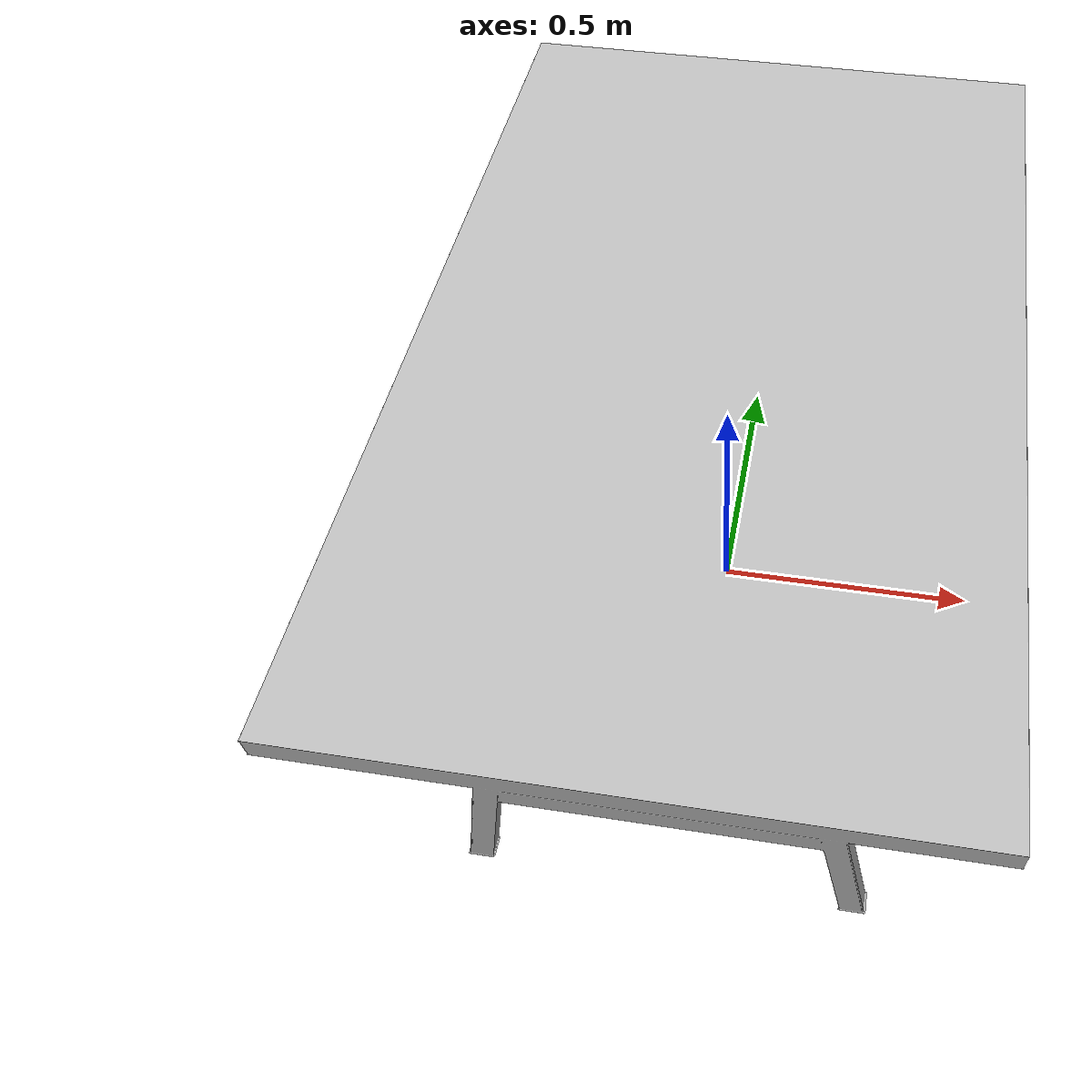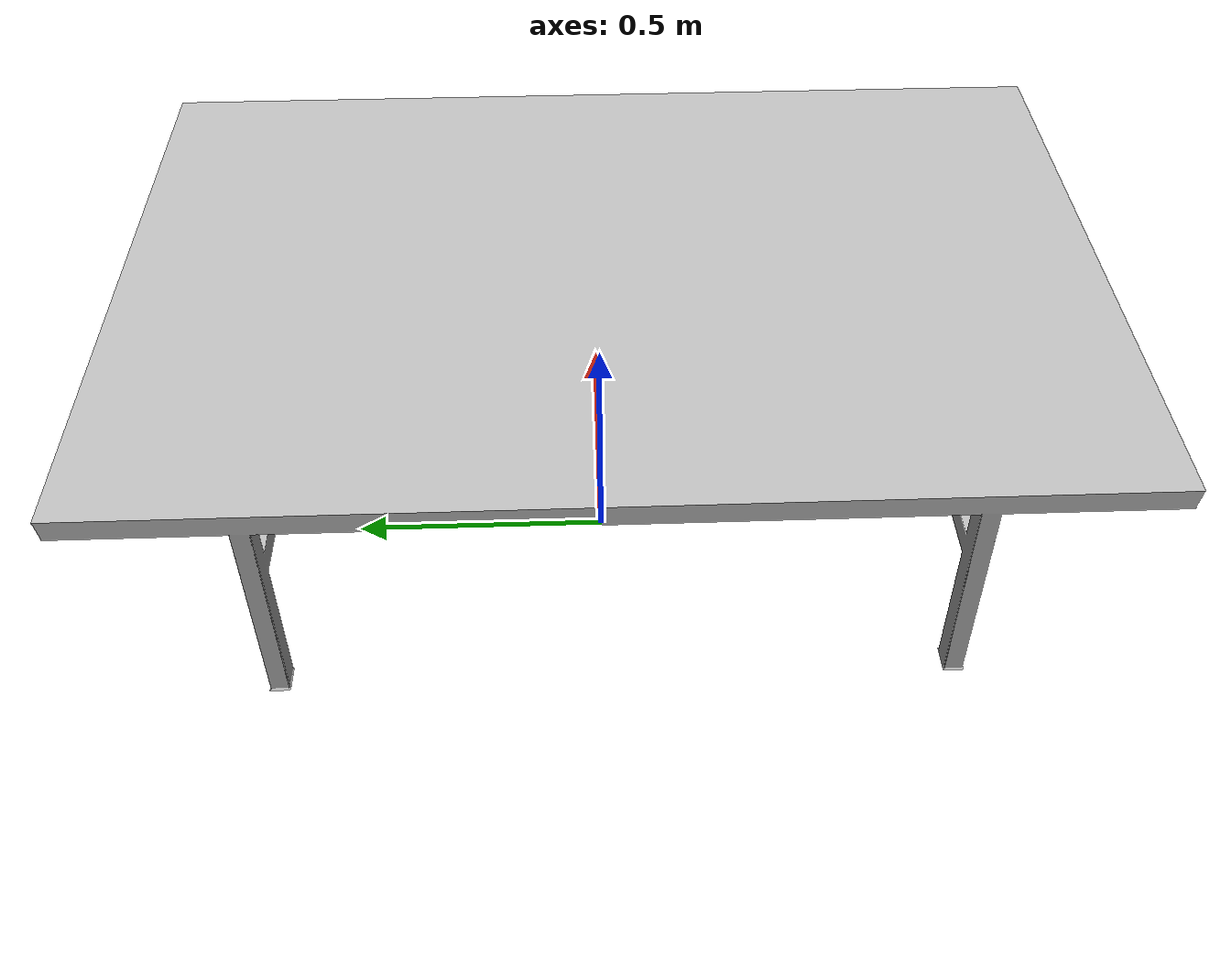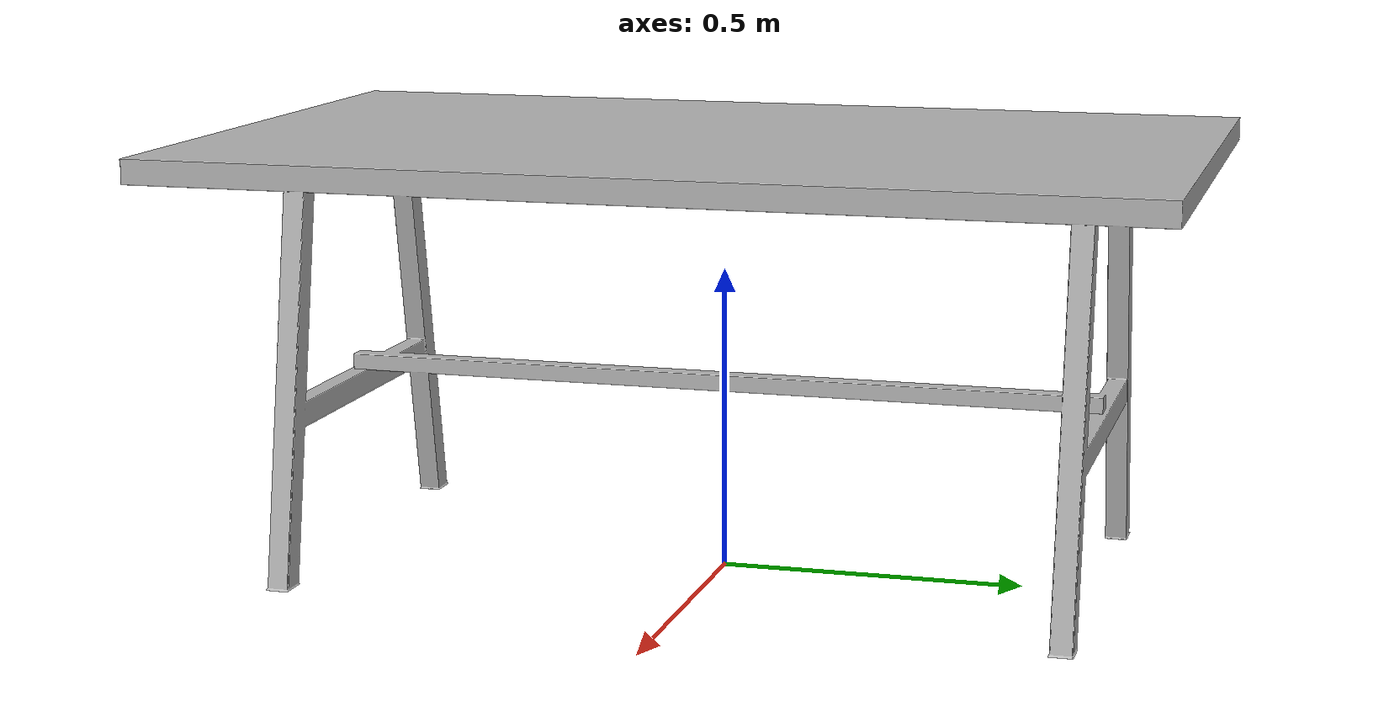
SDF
<?xml version="1.0" ?>
<sdf version="1.6">
  <model name="Table">
    <static>true</static>
    <link name="link">
      <collision name="collision">
        <geometry>
          <mesh>
            <scale>1 1 1</scale>
            <uri>model://Table/meshes/Table.dae</uri>
          </mesh>
        </geometry>
      </collision>
      <visual name="visual">
        <geometry>
          <mesh>
            <scale>1 1 1</scale>
            <uri>model://Table/meshes/Table.dae</uri>
          </mesh>
        </geometry>
      </visual>
    </link>
  </model>
</sdf>
